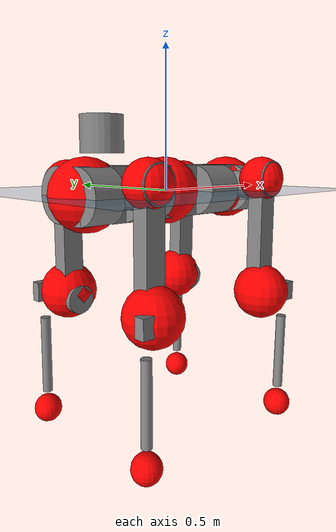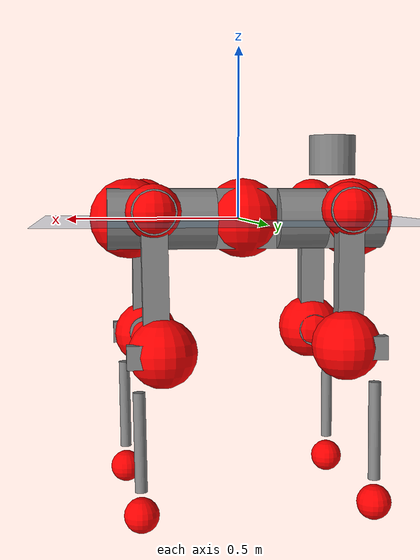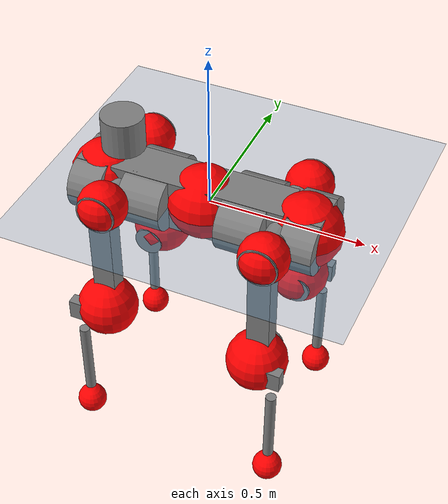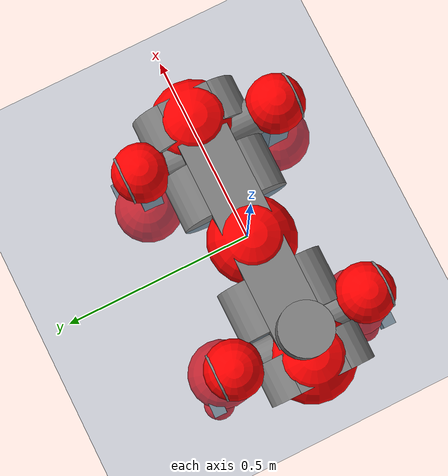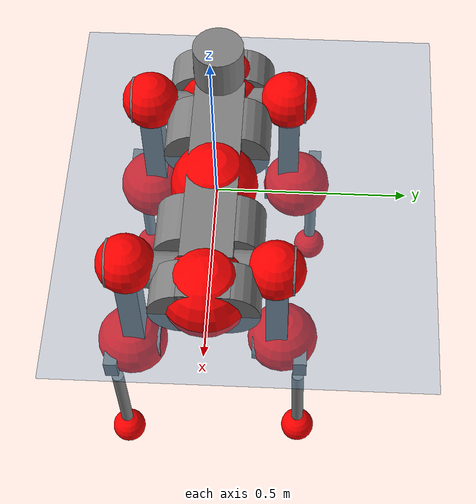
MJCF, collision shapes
<mujoco model="anymal_c">
  <compiler angle="radian" assetdir="assets" balanceinertia="true" inertiafromgeom="false"/>

  <option timestep="0.005" density="1.2" viscosity="2e-05"/>

  <size nkey="1"/>

  <visual>
    <quality shadowsize="8192"/>
    <map shadowclip="0.5"/>
  </visual>

  <default>
    <default class="/">
      <material specular="0" shininess="0.25"/>
      <geom contype="0" conaffinity="0" group="1" solref="-1000 -80"/>
      <site size="0.01 0.005 0.005" group="5"/>
      <general forcelimited="true" forcerange="-80 80" biastype="affine" gainprm="80" biasprm="0 -80 -2"/>
      <default class="anymal_c">
        <joint armature="0.01" damping="0.01" frictionloss="0.1"/>
        <default class="visual">
          <geom type="mesh" group="2"/>
          <default class="visual_zflip"/>
        </default>
        <default class="collision">
          <geom type="cylinder" group="3"/>
          <default class="foot">
            <geom size="0.03 0 0" type="sphere" condim="6" priority="1" friction="0.8 0.02 0.01" solimp="0.015 1 0.03"/>
          </default>
        </default>
      </default>
      <default class="reward_collision_sphere">
        <geom group="5" rgba="1 0 0 1"/>
      </default>
    </default>
  </default>

  <asset>
    <texture type="skybox" colorspace="auto" name="//unnamed_texture_0" builtin="gradient" rgb1="0.95 0.95 0.95" rgb2="0.95 0.95 0.95" width="100" height="600"/>
    <texture type="2d" colorspace="auto" name="texplane" builtin="checker" rgb1="0.345 0.575 0.748" rgb2="0.345 0.575 0.748" markrgb="1 1 1" width="512" height="512"/>
    <texture type="2d" colorspace="linear" name="base" file="base.png"/>
    <texture type="2d" colorspace="linear" name="top_shell" file="top_shell.png"/>
    <texture type="2d" colorspace="linear" name="bottom_shell" file="bottom_shell.png"/>
    <texture type="2d" colorspace="linear" name="remote" file="remote.png"/>
    <texture type="2d" colorspace="linear" name="hatch" file="hatch.png"/>
    <texture type="2d" colorspace="linear" name="handle" file="handle.png"/>
    <texture type="2d" colorspace="linear" name="face" file="face.png"/>
    <texture type="2d" colorspace="linear" name="battery" file="battery.png"/>
    <texture type="2d" colorspace="linear" name="lidar_cage" file="lidar_cage.png"/>
    <texture type="2d" colorspace="linear" name="depth_camera" file="depth_camera.png"/>
    <texture type="2d" colorspace="linear" name="wide_angle_camera" file="wide_angle_camera.png"/>
    <texture type="2d" colorspace="linear" name="lidar" file="lidar.png"/>
    <texture type="2d" colorspace="linear" name="drive" file="drive.png"/>
    <texture type="2d" colorspace="linear" name="hip_l" file="hip_l.png"/>
    <texture type="2d" colorspace="linear" name="shank_l" file="shank_l.png"/>
    <texture type="2d" colorspace="linear" name="foot" file="foot.png"/>
    <texture type="2d" colorspace="linear" name="thigh" file="thigh.png"/>
    <texture type="2d" colorspace="linear" name="shank_r" file="shank_r.png"/>
    <texture type="2d" colorspace="linear" name="hip_r" file="hip_r.png"/>
    <material name="MatPlane" class="/" texture="texplane" texuniform="true" texrepeat="2 2" specular="0.9" shininess="0.5"/>
    <material name="black_plastic" class="/" rgba="0.007 0.007 0.007 1"/>
    <material name="green" class="/" rgba="0.052 0.178 0.033 1"/>
    <material name="red" class="/" rgba="0.178 0.006 0.005 1"/>
    <material name="yellow" class="/" rgba="0.178 0.119 0.006 1"/>
    <material name="lwl" class="/" rgba="0.8 0.8 0.8 1"/>
    <material name="base" class="/" texture="base"/>
    <material name="top_shell" class="/" texture="top_shell"/>
    <material name="bottom_shell" class="/" texture="bottom_shell"/>
    <material name="hip_l" class="/" texture="hip_l"/>
    <material name="thigh" class="/" texture="thigh"/>
    <material name="shank_l" class="/" texture="shank_l"/>
    <material name="foot" class="/" texture="foot"/>
    <material name="hip_r" class="/" texture="hip_r"/>
    <material name="shank" class="/" texture="shank_r"/>
    <material name="hatch" class="/" texture="hatch"/>
    <material name="remote" class="/" texture="remote"/>
    <material name="handle" class="/" texture="handle"/>
    <material name="face" class="/" texture="face"/>
    <material name="depth_camera" class="/" texture="depth_camera"/>
    <material name="wide_angle_camera" class="/" texture="wide_angle_camera"/>
    <material name="battery" class="/" texture="battery"/>
    <material name="lidar_cage" class="/" texture="lidar_cage"/>
    <material name="lidar" class="/" texture="lidar"/>
    <material name="drive" class="/" texture="drive"/>
    <mesh name="base_0" class="/" file="base_0.obj"/>
    <mesh name="base_1" class="/" file="base_1.obj"/>
    <mesh name="base_2" class="/" file="base_2.obj"/>
    <mesh name="base_3" class="/" file="base_3.obj"/>
    <mesh name="base_4" class="/" file="base_4.obj"/>
    <mesh name="base_5" class="/" file="base_5.obj"/>
    <mesh name="top_shell" class="/" file="top_shell.obj"/>
    <mesh name="bottom_shell" class="/" file="bottom_shell.obj"/>
    <mesh name="remote" class="/" file="remote.obj"/>
    <mesh name="handle" class="/" file="handle.obj"/>
    <mesh name="face" class="/" file="face.obj"/>
    <mesh name="wide_angle_camera" class="/" file="wide_angle_camera.obj"/>
    <mesh name="depth_camera" class="/" file="depth_camera.obj"/>
    <mesh name="battery" class="/" file="battery.obj"/>
    <mesh name="lidar_cage" class="/" file="lidar_cage.obj"/>
    <mesh name="lidar" class="/" file="lidar.obj"/>
    <mesh name="drive" class="/" file="drive.obj"/>
    <mesh name="hip_l" class="/" file="hip_l.obj"/>
    <mesh name="thigh" class="/" file="thigh.obj"/>
    <mesh name="shank_l" class="/" file="shank_l.obj"/>
    <mesh name="foot" class="/" file="foot.obj"/>
    <mesh name="hip_r" class="/" file="hip_r.obj"/>
    <mesh name="hatch" class="/" file="hatch.obj"/>
    <mesh name="shank_r" class="/" file="shank_r.obj"/>
  </asset>

  <worldbody>
    <geom name="floor" class="/" size="100 100 0.125" type="plane" group="0" material="MatPlane"/>
    <light name="toplight_shadow" class="/" pos="0 0 5" dir="0.0990148 0.0990148 -0.990148" type="directional" ambient="0.04 0.04 0.04" diffuse="0.55 0.55 0.55" specular="0.12 0.12 0.12"/>
    <light name="toplight_fill" class="/" pos="0 0 5" dir="0.0990148 0.0990148 -0.990148" type="directional" castshadow="false" ambient="0.04 0.04 0.04" diffuse="0.3 0.3 0.3" specular="0.08 0.08 0.08"/>
    <body name="trunk" childclass="anymal_c" pos="-0.0135633 -0.0068192 0.00188204" quat="0.999997 0.00202387 0.000134743 -0.00122133">
      <inertial pos="0.00138508 0.00184056 0.066829" quat="0.470104 0.488927 0.526247 0.512851" mass="17.606" diaginertia="0.0976816 0.148142 1.05944"/>
      <joint name="//unnamed_joint_0" type="free" armature="0" damping="0" frictionloss="0"/>
      <geom name="//unnamed_geom_1" class="visual" material="green" mesh="base_0"/>
      <geom name="//unnamed_geom_2" class="visual" material="yellow" mesh="base_1"/>
      <geom name="//unnamed_geom_3" class="visual" material="red" mesh="base_2"/>
      <geom name="//unnamed_geom_4" class="visual" material="black_plastic" mesh="base_3"/>
      <geom name="//unnamed_geom_5" class="visual" material="lwl" mesh="base_4"/>
      <geom name="//unnamed_geom_6" class="visual" material="base" mesh="base_5"/>
      <geom name="trunk_1" class="collision" size="0.282015 0.0680725 0.0875218" type="box"/>
      <geom name="trunk_2" class="collision" size="0.0875218 0.0705036" pos="0.160421 0.0557592 0" quat="0.707107 0 0.707107 0"/>
      <geom name="trunk_3" class="collision" size="0.0875218 0.0705036" pos="-0.160421 0.0557592 0" quat="0.707107 0 0.707107 0"/>
      <geom name="trunk_4" class="collision" size="0.0875218 0.0705036" pos="0.160421 -0.0557592 0" quat="0.707107 0 0.707107 0"/>
      <geom name="trunk_5" class="collision" size="0.0875218 0.0705036" pos="-0.160421 -0.0557592 0" quat="0.707107 0 0.707107 0"/>
      <geom name="//unnamed_geom_12" class="visual" material="top_shell" mesh="top_shell"/>
      <geom name="//unnamed_geom_13" class="visual" material="bottom_shell" mesh="bottom_shell"/>
      <geom name="//unnamed_geom_14" class="visual" material="remote" mesh="remote"/>
      <geom name="//unnamed_geom_15" class="visual" material="handle" mesh="handle"/>
      <geom name="//unnamed_geom_16" class="visual" pos="0.305721 0 0" quat="1 0 0 0" material="face" mesh="face"/>
      <geom name="trunk_6" class="collision" size="0.0534855 0.0680725 0.0875218" pos="0.346287 0 0" type="box"/>
      <geom name="//unnamed_geom_18" class="collision" size="0.0875218 0.0534855" pos="0.346287 0.0557592 0" quat="0.707107 0 0.707107 0"/>
      <geom name="//unnamed_geom_19" class="collision" size="0.0875218 0.0534855" pos="0.346287 -0.0557592 0" quat="0.707107 0 0.707107 0"/>
      <geom name="//unnamed_geom_20" class="visual" pos="0.340524 0 -0.0452987" quat="0.965926 0 0.258819 0" material="depth_camera" mesh="depth_camera"/>
      <geom name="//unnamed_geom_21" class="visual" pos="0.378371 0 0.0207075" material="wide_angle_camera" mesh="wide_angle_camera"/>
      <geom name="//unnamed_geom_22" class="visual_zflip" pos="-0.305721 0 0" quat="0 0 0 1" material="face" mesh="face"/>
      <geom name="trunk_7" class="collision" size="0.0534855 0.0680725 0.0875218" pos="-0.346287 0 0" quat="0 0 0 1" type="box"/>
      <geom name="//unnamed_geom_24" class="collision" size="0.0875218 0.0534855" pos="-0.346287 -0.0557592 0" quat="0 -0.707107 0 0.707107"/>
      <geom name="//unnamed_geom_25" class="collision" size="0.0875218 0.0534855" pos="-0.346287 0.0557592 0" quat="0 -0.707107 0 0.707107"/>
      <geom name="//unnamed_geom_26" class="visual" pos="-0.340524 0 -0.0452987" quat="0 -0.258819 0 0.965926" material="depth_camera" mesh="depth_camera"/>
      <geom name="//unnamed_geom_27" class="visual_zflip" pos="-0.378371 0 0.0207075" quat="0 0 0 1" material="wide_angle_camera" mesh="wide_angle_camera"/>
      <geom name="//unnamed_geom_28" class="visual" material="battery" mesh="battery"/>
      <geom name="//unnamed_geom_29" class="visual" pos="0 0.0617059 0.0352766" quat="0.683013 -0.183013 0.183013 0.683013" material="depth_camera" mesh="depth_camera"/>
      <geom name="//unnamed_geom_30" class="visual" pos="0 -0.0617059 0.0352766" quat="0.683013 0.183013 0.183013 -0.683013" material="depth_camera" mesh="depth_camera"/>
      <geom name="//unnamed_geom_31" class="visual" pos="-0.268474 0 0.10167" quat="1 0 0 0" material="lidar_cage" mesh="lidar_cage"/>
      <geom name="trunk_8" class="collision" size="0.0680725 0.0583478" pos="-0.268474 0 0.184666"/>
      <geom name="//unnamed_geom_33" class="visual" pos="-0.268474 2.31774e-05 0.1967" quat="0.707107 0 0 -0.707107" material="lidar" mesh="lidar"/>
      <geom name="//unnamed_geom_34" class="visual" pos="0.221196 0.0830507 -1.01207e-08" quat="0.258819 0.965926 0 0" material="drive" mesh="drive"/>
      <geom name="//unnamed_geom_35" class="visual" pos="0.221196 -0.0830507 1.01207e-08" quat="0.258819 -0.965926 0 0" material="drive" mesh="drive"/>
      <geom name="//unnamed_geom_36" class="visual" pos="-0.221196 0.0830507 1.01207e-08" quat="0 0 0.965926 -0.258819" material="drive" mesh="drive"/>
      <geom name="//unnamed_geom_37" class="visual" pos="-0.221196 -0.0830507 -1.01207e-08" quat="0 0 -0.965926 -0.258819" material="drive" mesh="drive"/>
      <geom name="//unnamed_geom_38" class="visual" pos="0.0855576 0 0.100978" quat="1 0 0 0" material="hatch" mesh="hatch"/>
      <geom name="//unnamed_geom_39" class="reward_collision_sphere" size="0.116696"/>
      <geom name="//unnamed_geom_40" class="reward_collision_sphere" size="0.116696" pos="0.331905 0 0"/>
      <geom name="//unnamed_geom_41" class="reward_collision_sphere" size="0.116696" pos="-0.331905 0 0"/>
      <site name="imu" pos="0.157483 0.022047 0.139396" size="0.00972464"/>
      <camera name="track" pos="0 -1.59312 0" quat="0.707107 0.707107 0 0" mode="trackcom"/>
      <camera name="ego_camera" pos="0.331905 0 -0.0553306" quat="-0.5 -0.5 0.5 0.5"/>
      <body name="LF_HIP" pos="0.219584 0.0836545 0.00921816" quat="0.258356 0.966029 0.000424547 -0.00629837">
        <inertial pos="0.0562921 -0.00514973 -0.0113526" quat="-0.127361 0.709642 -0.134103 0.679856" mass="2.73283" diaginertia="0.00136404 0.00181803 0.0174847"/>
        <joint name="LF_HAA" pos="0 0 0" axis="0.996621 0.0202082 0.0796136" stiffness="0.0685074" range="-0.680686 0.482451" armature="0.0165528" damping="0" frictionloss="0.0579564"/>
        <geom name="//unnamed_geom_42" class="visual" pos="0 -0.000595357 9.7787e-05" quat="0.258819 -0.965926 0 0" material="hip_l" mesh="hip_l"/>
        <geom name="//unnamed_geom_43" class="visual" pos="0.0441802 -0.0545189 -0.0358161" quat="0.183013 -0.683013 0.683013 0.183013" material="drive" mesh="drive"/>
        <geom name="//unnamed_geom_44" class="collision" size="0.0486232 0.0680725" pos="0.0441802 -0.0095267 -0.00955145" quat="-0.353553 -0.612372 0.612372 -0.353553"/>
        <body name="LF_THIGH" pos="0.0541526 -0.057426 -0.0492635" quat="0.184584 -0.683688 0.682777 0.179763">
          <inertial pos="0.024486 -0.000121958 -0.324266" quat="0.992487 -0.0418767 -0.0692446 0.0917665" mass="2.9885" diaginertia="0.00703812 0.0102794 0.0230594"/>
          <joint name="LF_HFE" pos="0 0 0" axis="0.999077 -0.0302192 0.0305419" stiffness="0.0483561" range="-3.28549 3.13226" armature="0.00305672" damping="0.0486016" frictionloss="0.141682"/>
          <geom name="//unnamed_geom_45" class="visual" pos="-0.00117376 -1.84957e-06 0" quat="0.707107 0 0 -0.707107" material="thigh" mesh="thigh"/>
          <geom name="//unnamed_geom_46" class="collision" size="0.0632102 0.0388986" pos="0.0295026 0 0" quat="0.5 0.5 -0.5 -0.5"/>
          <geom name="//unnamed_geom_47" class="collision" size="0.0364674 0.0291739 0.137423" pos="0.022127 0 -0.195475" quat="0.707107 0 0 -0.707107" type="box"/>
          <geom name="//unnamed_geom_48" class="visual" pos="0.0739778 0 -0.394231" quat="1 0 0 0" material="drive" mesh="drive"/>
          <geom name="//unnamed_geom_49" class="collision" size="0.0486232 0.0680725" pos="0.0223482 0 -0.394231" quat="0.707107 0 0.707107 0"/>
          <geom name="//unnamed_geom_50" class="reward_collision_sphere" size="0.0777971" pos="0.0184391 0 0"/>
          <body name="LF_SHANK" pos="0.0731841 0.0159881 -0.390131" quat="0.999985 -0.000810739 -0.00535654 0.000505061">
            <inertial pos="-0.00391942 -0.0442055 -0.112055" quat="0.989714 -0.118713 -0.0727642 -0.0328418" mass="0.420147" diaginertia="0.00223607 0.00262164 0.00578857"/>
            <joint name="LF_KFE" pos="0 0 0" axis="0.999527 0.0300393 0.00651726" range="-3.14322 3.20793" armature="0.00913733" damping="0.0575055" frictionloss="0.0858469"/>
            <geom name="//unnamed_geom_51" class="visual" pos="-0.000382738 -0.00204078 0" quat="0.707107 0 0 -0.707107" material="shank_l" mesh="shank_l"/>
            <geom name="LF_kfe_act" class="collision" size="0.0583478 0.0194493" pos="0.0147513 0 0" quat="0.5 0.5 -0.5 -0.5"/>
            <geom name="//unnamed_geom_53" class="collision" size="0.0559157 0.0328207 0.0184768" pos="0.0147513 -0.0458014 0" quat="0.5 0.5 -0.5 -0.5" type="box"/>
            <geom name="//unnamed_geom_54" class="visual" pos="0.00962532 -0.0707151 -0.467502" quat="0.382683 0 0 -0.92388" material="foot" mesh="foot"/>
            <geom name="LF_calf" class="collision" size="0.0170181 0.137362" pos="0.00962523 -0.0700575 -0.233751" quat="0.707107 0 0 -0.707107"/>
            <geom name="LF_foot" class="foot" size="0.0172924" pos="0.00962523 -0.0700575 -0.436379" quat="0.707107 0 0 -0.707107"/>
            <geom name="//unnamed_geom_57" class="reward_collision_sphere" size="0.0972464" pos="-0.0368783 0 0"/>
            <geom name="//unnamed_geom_58" class="reward_collision_sphere" size="0.0486232" pos="0.00962523 -0.0700575 -0.436379"/>
            <site name="LF_foot" class="foot" pos="0.00962523 -0.0700575 -0.436379" quat="0.707107 0 0 -0.707107" size="0.00972464"/>
          </body>
        </body>
      </body>
      <body name="RF_HIP" pos="0.236912 -0.0980879 0.012315" quat="0.259096 -0.965851 -6.06232e-05 -0.000635598">
        <inertial pos="0.0265402 0.00701067 0.0026162" quat="0.0983916 0.682206 0.0982345 0.717819" mass="2.00109" diaginertia="0.00106324 0.00144976 0.0135084"/>
        <joint name="RF_HAA" pos="0 0 0" axis="0.997778 -0.000956368 -0.0666177" range="-0.203721 0.661918" armature="0.010444" damping="0" frictionloss="0.158566"/>
        <geom name="//unnamed_geom_59" class="visual" pos="0 0.000595353 9.77867e-05" quat="0.258819 0.965926 0 0" material="hip_r" mesh="hip_r"/>
        <geom name="//unnamed_geom_60" class="visual" pos="0.0441802 0.0545189 -0.0358161" quat="0.183013 0.683013 0.683013 -0.183013" material="drive" mesh="drive"/>
        <geom name="//unnamed_geom_61" class="collision" size="0.0486232 0.0680725" pos="0.0441802 0.0095267 -0.00955145" quat="-0.353553 0.612372 0.612372 0.353553"/>
        <body name="RF_THIGH" pos="0.044032 0.0633744 -0.0672699" quat="0.183354 0.682144 0.683856 -0.182762">
          <inertial pos="0.0311237 -0.0164561 -0.345019" quat="0.99236 -0.00651235 -0.0815034 0.0923917" mass="2.61099" diaginertia="0.00646678 0.0084807 0.0194327"/>
          <joint name="RF_HFE" pos="0 0 0" axis="0.999406 -0.0142316 0.0313805" range="-3.08319 2.97487" armature="0.0125739" damping="0.0593967" frictionloss="0.0779436"/>
          <geom name="//unnamed_geom_62" class="visual" pos="-0.00117376 -1.84957e-06 0" quat="0.707107 0 0 -0.707107" material="thigh" mesh="thigh"/>
          <geom name="//unnamed_geom_63" class="collision" size="0.0632102 0.0388986" pos="0.0295026 0 0" quat="0.5 0.5 0.5 0.5"/>
          <geom name="//unnamed_geom_64" class="collision" size="0.0364674 0.0291739 0.137423" pos="0.022127 0 -0.195475" quat="0.707107 0 0 0.707107" type="box"/>
          <geom name="//unnamed_geom_65" class="visual" pos="0.0739778 0 -0.394231" quat="1 0 0 0" material="drive" mesh="drive"/>
          <geom name="//unnamed_geom_66" class="collision" size="0.0486232 0.0680725" pos="0.0223482 0 -0.394231" quat="0.707107 0 0.707107 0"/>
          <geom name="//unnamed_geom_67" class="reward_collision_sphere" size="0.0777971" pos="0.0184391 0 0"/>
          <body name="RF_SHANK" pos="0.0729544 -0.00544591 -0.407021" quat="0.99997 -0.00724391 0.00259968 -0.000522605">
            <inertial pos="-0.0125856 0.058901 -0.124167" quat="0.994871 0.0979269 0.00437131 0.0249712" mass="0.652841" diaginertia="0.00206922 0.00258532 0.00476316"/>
            <joint name="RF_KFE" pos="0 0 0" axis="0.999608 -0.0278885 0.00250025" range="-2.84792 3.17524" armature="0.00805933" damping="0" frictionloss="0.0324194"/>
            <geom name="//unnamed_geom_68" class="visual" pos="-0.000382736 0.00204077 0" quat="0.707107 0 0 0.707107" material="shank" mesh="shank_r"/>
            <geom name="RF_kfe_act" class="collision" size="0.0583478 0.0194493" pos="0.0147513 0 0" quat="0.5 0.5 0.5 0.5"/>
            <geom name="//unnamed_geom_70" class="collision" size="0.0559157 0.0328207 0.0184768" pos="0.0147513 0.0458014 0" quat="0.5 0.5 0.5 0.5" type="box"/>
            <geom name="//unnamed_geom_71" class="visual" pos="0.00962514 0.0707151 -0.467502" quat="0.382683 0 0 0.92388" material="foot" mesh="foot"/>
            <geom name="RF_calf" class="collision" size="0.0170181 0.137362" pos="0.00962523 0.0700575 -0.233751" quat="0.707107 0 0 0.707107"/>
            <geom name="RF_foot" class="foot" size="0.0314766" pos="0.00962523 0.0700575 -0.436379" quat="0.707107 0 0 0.707107"/>
            <geom name="//unnamed_geom_74" class="reward_collision_sphere" size="0.0972464" pos="-0.0368783 0 0"/>
            <geom name="//unnamed_geom_75" class="reward_collision_sphere" size="0.0486232" pos="0.00962523 0.0700575 -0.436379"/>
            <site name="RF_foot" class="foot" pos="0.00962523 0.0700575 -0.436379" quat="0.707107 0 0 0.707107" size="0.00972464"/>
          </body>
        </body>
      </body>
      <body name="LH_HIP" pos="-0.238072 0.0961222 0.00385859" quat="0.000498121 -0.00259172 0.966095 -0.258174">
        <inertial pos="0.0271574 0.0284641 -0.010889" quat="0.104279 0.719231 0.0993254 0.679682" mass="2.80346" diaginertia="0.00135515 0.00158772 0.0192805"/>
        <joint name="LH_HAA" pos="0 0 0" axis="0.999294 0.0375489 -0.00138364" stiffness="0.00347448" range="-0.703221 0.585327" armature="0.00948234" damping="0.00841932" frictionloss="0.12746"/>
        <geom name="//unnamed_geom_76" class="visual" pos="0 0.000595353 9.77867e-05" quat="-0.258819 -0.965926 0 0" material="hip_r" mesh="hip_r"/>
        <geom name="//unnamed_geom_77" class="visual" pos="0.0441802 0.0545189 -0.0358161" quat="0.183013 0.683013 0.683013 -0.183013" material="drive" mesh="drive"/>
        <geom name="//unnamed_geom_78" class="collision" size="0.0486232 0.0680725" pos="0.0441802 0.0095267 -0.00955145" quat="-0.353553 0.612372 0.612372 0.353553"/>
        <body name="LH_THIGH" pos="0.0353615 0.0511118 -0.0573124" quat="0.18213 0.68152 0.685195 -0.181293">
          <inertial pos="0.0184377 -0.0150103 -0.341334" quat="0.991947 0.046158 -0.0975193 0.0663298" mass="2.30472" diaginertia="0.00643607 0.00809676 0.0219208"/>
          <joint name="LH_HFE" pos="0 0 0" axis="0.997563 0.0125461 -0.0686337" stiffness="0.0551096" range="-3.35288 2.94307" armature="0.003133" damping="0" frictionloss="0.035483"/>
          <geom name="//unnamed_geom_79" class="visual" pos="-0.00117376 -1.84957e-06 0" quat="0.707107 0 0 -0.707107" material="thigh" mesh="thigh"/>
          <geom name="//unnamed_geom_80" class="collision" size="0.0632102 0.0388986" pos="0.0295026 0 0" quat="0.5 0.5 -0.5 -0.5"/>
          <geom name="//unnamed_geom_81" class="collision" size="0.0364674 0.0291739 0.137423" pos="0.022127 0 -0.195475" quat="0.707107 0 0 -0.707107" type="box"/>
          <geom name="//unnamed_geom_82" class="visual" pos="0.0739778 0 -0.394231" quat="1 0 0 0" material="drive" mesh="drive"/>
          <geom name="//unnamed_geom_83" class="collision" size="0.0486232 0.0680725" pos="0.0223482 0 -0.394231" quat="0.707107 0 0.707107 0"/>
          <geom name="//unnamed_geom_84" class="reward_collision_sphere" size="0.0777971" pos="0.0184391 0 0"/>
          <body name="LH_SHANK" pos="0.0837186 -0.0123065 -0.378515" quat="0.999968 0.00309989 2.57513e-05 -0.00732831">
            <inertial pos="0.00162794 0.0484643 -0.128309" quat="0.988927 0.136871 -0.0324736 0.047272" mass="0.636763" diaginertia="0.00224364 0.00325156 0.00562149"/>
            <joint name="LH_KFE" pos="0 0 0" axis="0.999418 -0.0340812 0.00153513" stiffness="0.038788" range="-3.23508 3.33867" armature="0.00755766" damping="0.0111068" frictionloss="0.154702"/>
            <geom name="//unnamed_geom_85" class="visual" pos="-0.000382736 0.00204077 0" quat="-0.707107 0 0 -0.707107" material="shank" mesh="shank_r"/>
            <geom name="LH_kfe_act" class="collision" size="0.0583478 0.0194493" pos="0.0147513 0 0" quat="0.5 0.5 -0.5 -0.5"/>
            <geom name="//unnamed_geom_87" class="collision" size="0.0559157 0.0328207 0.0184768" pos="0.0147513 0.0458014 0" quat="0.5 0.5 -0.5 -0.5" type="box"/>
            <geom name="//unnamed_geom_88" class="visual" pos="0.00962514 0.0707151 -0.467502" quat="-0.382683 0 0 -0.92388" material="foot" mesh="foot"/>
            <geom name="LH_calf" class="collision" size="0.0170181 0.137362" pos="0.00962523 0.0700575 -0.233751" quat="0.707107 0 0 -0.707107"/>
            <geom name="LH_foot" class="foot" size="0.0426242" pos="0.00962523 0.0700575 -0.436379" quat="0.707107 0 0 -0.707107"/>
            <geom name="//unnamed_geom_91" class="reward_collision_sphere" size="0.0972464" pos="-0.0368783 0 0"/>
            <geom name="//unnamed_geom_92" class="reward_collision_sphere" size="0.0486232" pos="0.00962523 0.0700575 -0.436379"/>
            <site name="LH_foot" class="foot" pos="0.00962523 0.0700575 -0.436379" quat="0.707107 0 0 -0.707107" size="0.00972464"/>
          </body>
        </body>
      </body>
      <body name="RH_HIP" pos="-0.206433 -0.0900858 0.0026551" quat="-2.46335e-05 0.000995754 -0.966695 -0.255928">
        <inertial pos="0.0306991 -0.0208006 -0.0111598" quat="-0.185835 0.681937 -0.172401 0.686079" mass="2.70663" diaginertia="0.00118581 0.00144291 0.0153273"/>
        <joint name="RH_HAA" pos="0 0 0" axis="0.997068 0.000746586 0.0765118" stiffness="0.0175091" range="-0.705254 0.371391" armature="0.013333" damping="0" frictionloss="0.0942349"/>
        <geom name="//unnamed_geom_93" class="visual" pos="0 -0.000595357 9.7787e-05" quat="-0.258819 0.965926 0 0" material="hip_l" mesh="hip_l"/>
        <geom name="//unnamed_geom_94" class="visual" pos="0.0441802 -0.0545189 -0.0358161" quat="-0.183013 0.683013 -0.683013 -0.183013" material="drive" mesh="drive"/>
        <geom name="//unnamed_geom_95" class="collision" size="0.0486232 0.0680725" pos="0.0441802 -0.0095267 -0.00955145" quat="0.353553 0.612372 -0.612372 0.353553"/>
        <body name="RH_THIGH" pos="0.0415538 -0.052911 -0.0714965" quat="-0.181167 0.684239 -0.682935 -0.180541">
          <inertial pos="0.0178002 0.0016198 -0.345464" quat="0.988488 0.0635499 -0.118969 0.0685538" mass="2.98465" diaginertia="0.00668545 0.00806672 0.0168528"/>
          <joint name="RH_HFE" pos="0 0 0" axis="0.999684 0.0249682 0.00292324" stiffness="0.054466" range="-3.14698 3.01361" armature="0.00420369" damping="0.0694157" frictionloss="0.137211"/>
          <geom name="//unnamed_geom_96" class="visual" pos="-0.00117376 -1.84957e-06 0" quat="0.707107 0 0 -0.707107" material="thigh" mesh="thigh"/>
          <geom name="//unnamed_geom_97" class="collision" size="0.0632102 0.0388986" pos="0.0295026 0 0" quat="0.5 0.5 0.5 0.5"/>
          <geom name="//unnamed_geom_98" class="collision" size="0.0364674 0.0291739 0.137423" pos="0.022127 0 -0.195475" quat="0.707107 0 0 0.707107" type="box"/>
          <geom name="//unnamed_geom_99" class="visual" pos="0.0739778 0 -0.394231" quat="1 0 0 0" material="drive" mesh="drive"/>
          <geom name="//unnamed_geom_100" class="collision" size="0.0486232 0.0680725" pos="0.0223482 0 -0.394231" quat="0.707107 0 0.707107 0"/>
          <geom name="//unnamed_geom_101" class="reward_collision_sphere" size="0.0777971" pos="0.0184391 0 0"/>
          <body name="RH_SHANK" pos="0.0756373 0.000596594 -0.392142" quat="1 -5.7493e-05 -8.59665e-05 -0.000113876">
            <inertial pos="0.017422 -0.0333099 -0.126204" quat="0.992502 -0.118679 -0.00832028 -0.0280395" mass="0.468582" diaginertia="0.00257919 0.00255359 0.0058865"/>
            <joint name="RH_KFE" pos="0 0 0" axis="0.999597 0.0283084 -0.00227393" stiffness="0.0169016" range="-3.01259 2.84687" armature="0.010175" damping="0" frictionloss="0.0247789"/>
            <geom name="//unnamed_geom_102" class="visual" pos="-0.000382738 -0.00204078 0" quat="0.707107 0 0 -0.707107" material="shank_l" mesh="shank_l"/>
            <geom name="RH_kfe_act" class="collision" size="0.0583478 0.0194493" pos="0.0147513 0 0" quat="0.5 0.5 0.5 0.5"/>
            <geom name="//unnamed_geom_104" class="collision" size="0.0559157 0.0328207 0.0184768" pos="0.0147513 -0.0458014 0" quat="0.5 0.5 0.5 0.5" type="box"/>
            <geom name="//unnamed_geom_105" class="visual" pos="0.00962532 -0.0707151 -0.467502" quat="0.382683 0 0 -0.92388" material="foot" mesh="foot"/>
            <geom name="RH_calf" class="collision" size="0.0170181 0.137362" pos="0.00962523 -0.0700575 -0.233751" quat="0.707107 0 0 0.707107"/>
            <geom name="RH_foot" class="foot" size="0.0134411" pos="0.00962523 -0.0700575 -0.436379" quat="0.707107 0 0 0.707107"/>
            <geom name="//unnamed_geom_108" class="reward_collision_sphere" size="0.0972464" pos="-0.0368783 0 0"/>
            <geom name="//unnamed_geom_109" class="reward_collision_sphere" size="0.0486232" pos="0.00962523 -0.0700575 -0.436379"/>
            <site name="RH_foot" class="foot" pos="0.00962523 -0.0700575 -0.436379" quat="0.707107 0 0 0.707107" size="0.00972464"/>
          </body>
        </body>
      </body>
    </body>
  </worldbody>

  <contact>
    <pair class="/" geom1="floor" geom2="LF_foot" name="//unnamed_contact_0"/>
    <pair class="/" geom1="floor" geom2="RF_foot" name="//unnamed_contact_1"/>
    <pair class="/" geom1="floor" geom2="LH_foot" name="//unnamed_contact_2"/>
    <pair class="/" geom1="floor" geom2="RH_foot" name="//unnamed_contact_3"/>
  </contact>

  <actuator>
    <general name="LF_HAA" class="/" joint="LF_HAA" forcerange="-82.8147 82.8147" gainprm="76.0823" biasprm="0 -76.0823 -1.66651"/>
    <general name="LF_HFE" class="/" joint="LF_HFE" forcerange="-114.761 114.761" gainprm="76.0823" biasprm="0 -76.0823 -1.66651"/>
    <general name="LF_KFE" class="/" joint="LF_KFE" forcerange="-56.5644 56.5644" gainprm="76.0823" biasprm="0 -76.0823 -1.66651"/>
    <general name="RF_HAA" class="/" joint="RF_HAA" forcerange="-82.1254 82.1254" gainprm="76.0823" biasprm="0 -76.0823 -1.66651"/>
    <general name="RF_HFE" class="/" joint="RF_HFE" forcerange="-69.5629 69.5629" gainprm="76.0823" biasprm="0 -76.0823 -1.66651"/>
    <general name="RF_KFE" class="/" joint="RF_KFE" forcerange="-50.3877 50.3877" gainprm="76.0823" biasprm="0 -76.0823 -1.66651"/>
    <general name="LH_HAA" class="/" joint="LH_HAA" forcerange="-82.1225 82.1225" gainprm="76.0823" biasprm="0 -76.0823 -1.66651"/>
    <general name="LH_HFE" class="/" joint="LH_HFE" forcerange="-49.3667 49.3667" gainprm="76.0823" biasprm="0 -76.0823 -1.66651"/>
    <general name="LH_KFE" class="/" joint="LH_KFE" forcerange="-103.982 103.982" gainprm="76.0823" biasprm="0 -76.0823 -1.66651"/>
    <general name="RH_HAA" class="/" joint="RH_HAA" forcerange="-82.6549 82.6549" gainprm="76.0823" biasprm="0 -76.0823 -1.66651"/>
    <general name="RH_HFE" class="/" joint="RH_HFE" forcerange="-61.1964 61.1964" gainprm="76.0823" biasprm="0 -76.0823 -1.66651"/>
    <general name="RH_KFE" class="/" joint="RH_KFE" forcerange="-124.274 124.274" gainprm="76.0823" biasprm="0 -76.0823 -1.66651"/>
  </actuator>

  <sensor>
    <gyro site="imu" name="imu_angular_velocity"/>
    <velocimeter site="imu" name="imu_linear_velocity"/>
    <framelinvel objtype="site" objname="LF_foot" name="LF_foot_global_linear_velocity"/>
    <framelinvel objtype="site" objname="RF_foot" name="RF_foot_global_linear_velocity"/>
    <framelinvel objtype="site" objname="LH_foot" name="LH_foot_global_linear_velocity"/>
    <framelinvel objtype="site" objname="RH_foot" name="RH_foot_global_linear_velocity"/>
  </sensor>

  <keyframe>
    <key name="home" qpos="0 0 0.55 1 0 0 0 0 0.4 -0.8 0 -0.4 0.8 0 -0.4 0.8 0 0.4 -0.8"/>
  </keyframe>
</mujoco>
